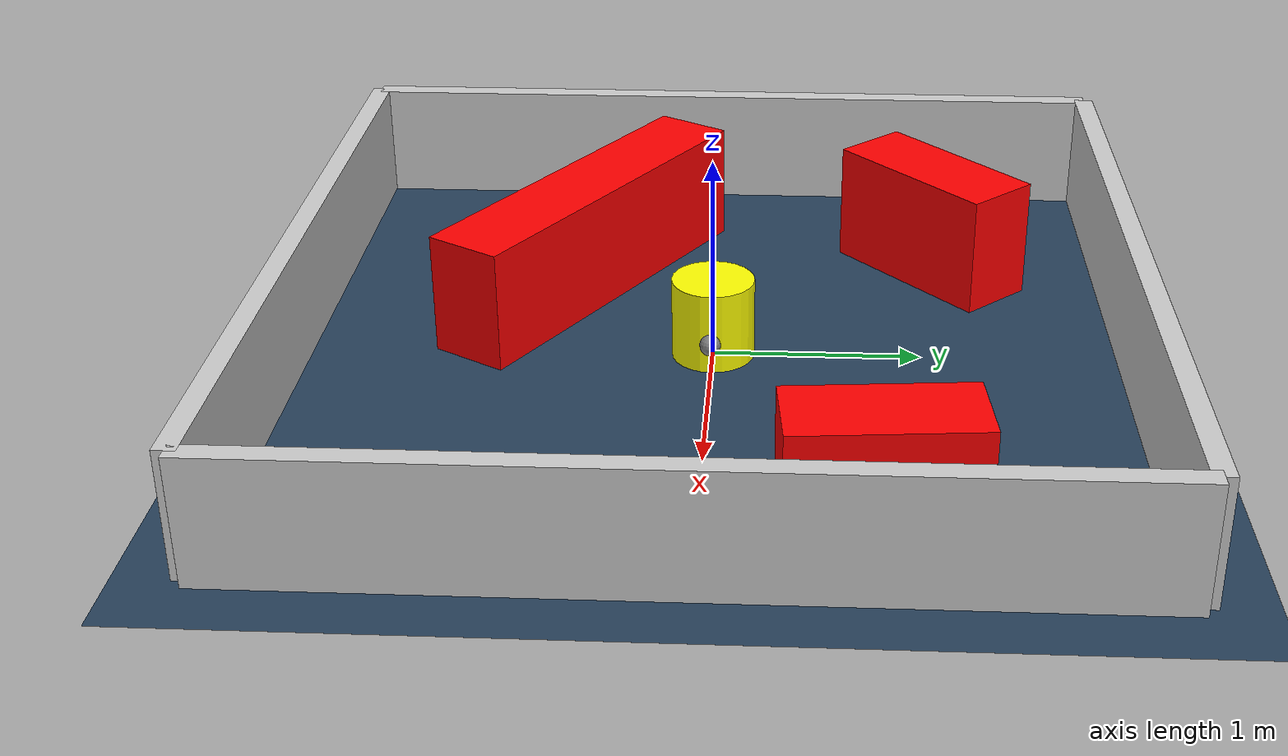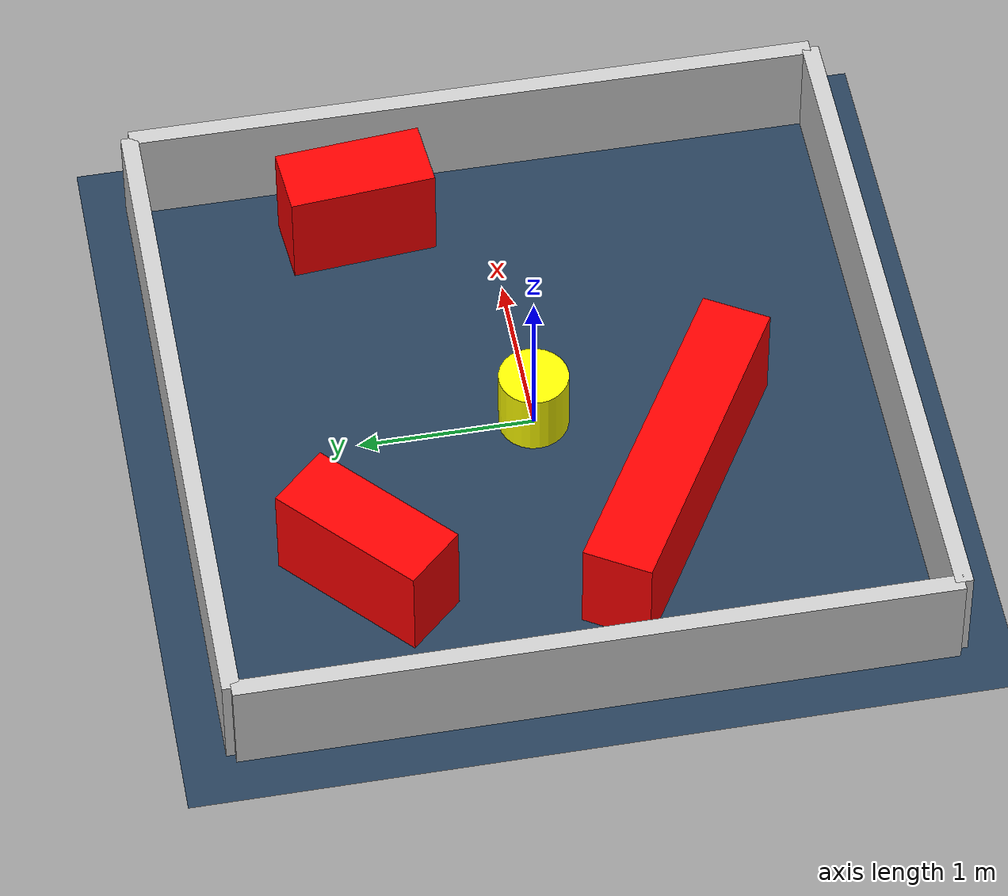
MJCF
<?xml version="1.0" ?>
<mujoco model="generated_environment">
  <option timestep="0.01" integrator="RK4" cone="elliptic"/>
  <default>
    <geom density="1"/>
  </default>
  <asset>
    <texture builtin="gradient" height="3072" rgb1="0.3 0.5 0.7" rgb2="0 0 0" type="skybox" width="512"/>
    <texture builtin="checker" height="300" mark="edge" markrgb="0.8 0.8 0.8" name="groundplane" rgb1="0.2 0.3 0.4" rgb2="0.1 0.2 0.3" type="2d" width="300"/>
    <material name="groundplane" reflectance="0.2" texrepeat="5 5" texture="groundplane" texuniform="true"/>
    <material name="robot" rgba="0.0 1.0 0.0 1"/>
  </asset>
  <worldbody>
    <light dir="0 0 -1" directional="true" pos="0 0 1.5"/>
    <geom condim="4" friction="1.0 0.005 0.001" material="groundplane" name="floor" size="0 0 0.05" type="plane"/>
    <body name="walls">
      <geom name="wall_1" condim="4" pos="-2.0 0.0 0.3" rgba="0.800000011920929 0.800000011920929 0.800000011920929 1.0" size="0.05 2.0 0.3" type="box"/>
      <geom name="wall_2" condim="4" pos="2.0 0.0 0.3" rgba="0.800000011920929 0.800000011920929 0.800000011920929 1.0" size="0.05 2.0 0.3" type="box"/>
      <geom name="wall_3" condim="4" pos="0.0 -2.0 0.3" rgba="0.800000011920929 0.800000011920929 0.800000011920929 1.0" size="2.0 0.05 0.3" type="box"/>
      <geom name="wall_4" condim="4" pos="0.0 2.0 0.3" rgba="0.800000011920929 0.800000011920929 0.800000011920929 1.0" size="2.0 0.05 0.3" type="box"/>
    </body>
    <body name="robot">
      <joint name="joint_x" type="slide" pos="0 0 0" axis="1 0 0"/>
      <joint name="joint_y" type="slide" pos="0 0 0" axis="0 1 0"/>
      <geom name="robot" type="sphere" pos="0.3 0.0 0.2" size="0.05" mass="5." friction="1.0 0.005 0.0001" condim="4" rgba="0.5 0.5 0.5 1.0"/>
      <site name="sensor_ball"/>
    </body>
    <body name="obstacle_movable_1">
      <geom name="obstacle_movable_1" condim="4" pos="0.0 0.0 0.2" euler="0 0 0.0" friction="1.0 0.005 0.001" rgba="1.0 1.0 0.0 1.0" size="0.2 0.2 0.0" type="cylinder" mass="0.1"/>
      <joint type="free"/>
    </body>
    <body name="obstacle_2_static">
      <geom name="obstacle_2_static" condim="4" pos="-0.9780798248380386 1.103159401110979 0.3" euler="0 0 42.78038318994182" friction="1.0 0.005 0.001" rgba="1 0 0 1" size="0.47691055944235333 0.2 0.3" type="box"/>
    </body>
    <body name="obstacle_3_static">
      <geom name="obstacle_3_static" condim="4" pos="-0.7081516567741319 -0.6799229126489275 0.3" euler="0 0 148.95124744111703" friction="1.0 0.005 0.001" rgba="1 0 0 1" size="0.968854156785599 0.2 0.3" type="box"/>
    </body>
    <body name="obstacle_4_static">
      <geom name="obstacle_4_static" condim="4" pos="1.5480955977399748 0.7579319488679717 0.3" euler="0 0 94.90642281706401" friction="1.0 0.005 0.001" rgba="1 0 0 1" size="0.421995528455593 0.2 0.3" type="box"/>
    </body>
  </worldbody>
  <actuator>
    <motor name="actuator_x" joint="joint_x" gear="1" ctrlrange="-1 1"/>
    <motor name="actuator_y" joint="joint_y" gear="1" ctrlrange="-1 1"/>
  </actuator>
</mujoco>
